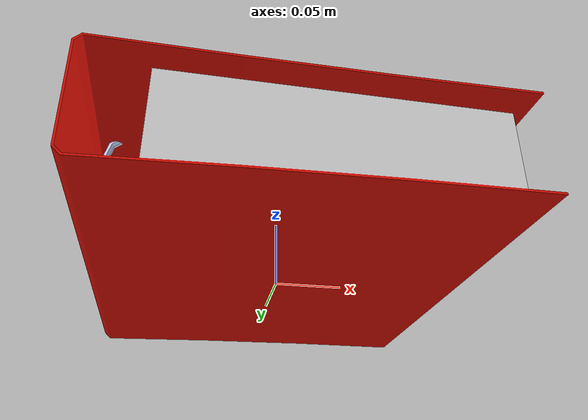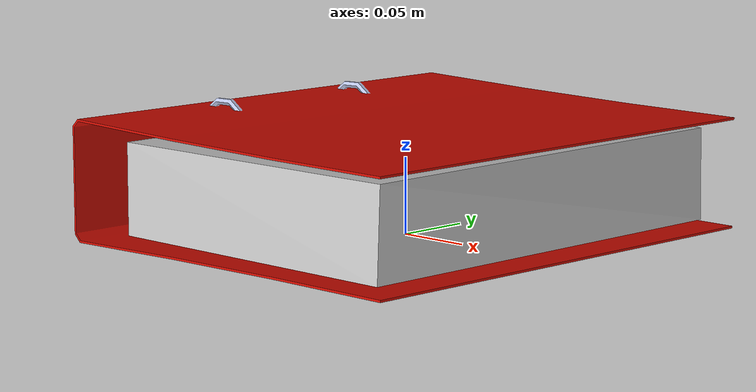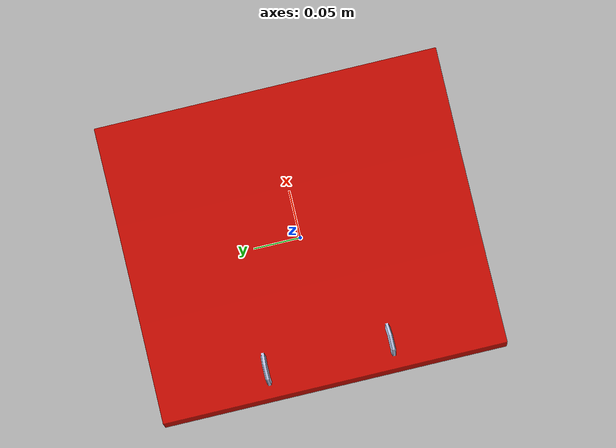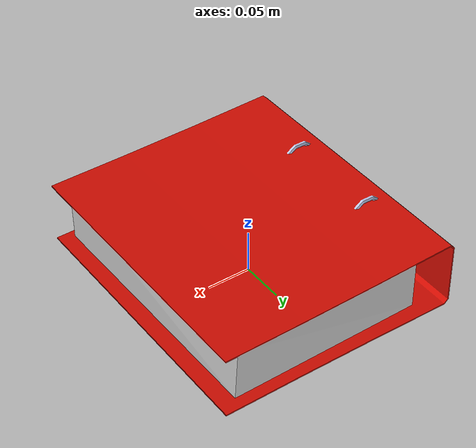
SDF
<?xml version='1.0'?>
<sdf version="1.4">
	<model name="folder">
		<static>1</static>
		<link name="link">
			<visual name="mesh">
				<geometry>
					<mesh>
						<uri>model://meshes/folder.dae</uri>
					</mesh>
				</geometry>
			</visual>
			<collision name="box">
				<pose>0 0 0.04 0 0 0</pose>
				<geometry>
					<box>
						<size>0.28 0.32 0.08</size>
					</box>
				</geometry>
			</collision>
		</link>
	</model>
</sdf>
